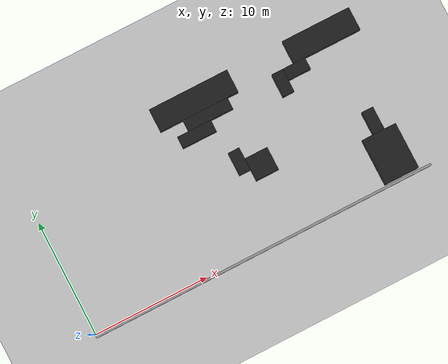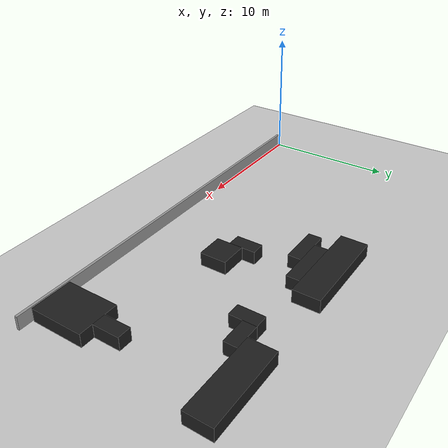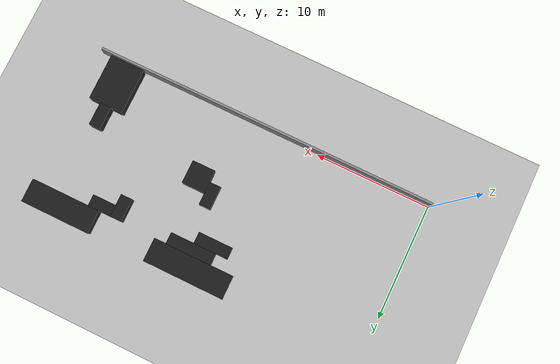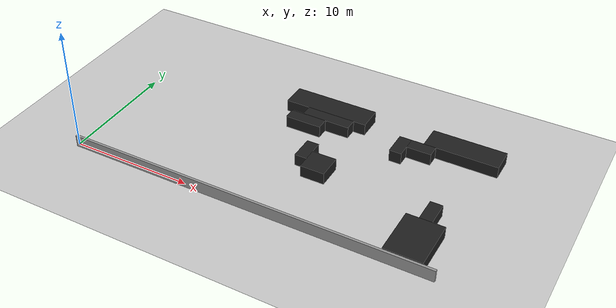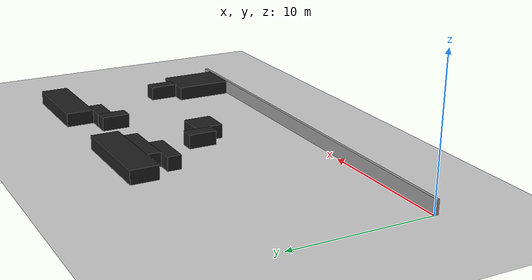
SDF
<sdf version="1.6">
 <world name="default">
  <model name="ground_plane">
   <static>1</static>
   <link name="link">
    <collision name="collision">
     <geometry><plane><normal>0 0 1</normal><size>100 100</size></plane></geometry>
     <surface><friction><ode><mu>100</mu><mu2>50</mu2></ode></friction></surface>
    </collision>
    <visual name="visual">
     <cast_shadows>0</cast_shadows>
     <geometry><plane><normal>0 0 1</normal><size>100 100</size></plane></geometry>
     <material>
      <script><uri>file://media/materials/scripts/gazebo.material</uri><name>Gazebo/Grey</name></script>
     </material>
    </visual>
   </link>
  </model>
  <model name="obstacle9">
   <link name="link_0">
    <inertial>
     <mass>1</mass>
     <inertia>
      <ixx>0.166667</ixx>
      <ixy>0</ixy>
      <ixz>0</ixz>
      <iyy>0.166667</iyy>
      <iyz>0</iyz>
      <izz>0.166667</izz>
     </inertia>
    </inertial>
    <visual name="visual">
     <geometry><box><size>3 4 1</size></box></geometry>
     <material>
      <lighting>1</lighting>
      <script><uri>file://media/materials/scripts/gazebo.material</uri><name>Gazebo/Black</name></script>
      <ambient>0 0 0 1</ambient>
      <diffuse>0 0 0 1</diffuse>
      <specular>0.01 0.01 0.01 1</specular>
      <emissive>0 0 0 1</emissive>
      <shader type="vertex"><normal_map>__default__</normal_map></shader>
     </material>
    </visual>
    <collision name="collision">
     <geometry><box><size>3 4 1</size></box></geometry>
     <surface>
      <friction>
       <ode><mu>5</mu><mu2>5</mu2><fdir1>0 0 0</fdir1><slip1>0</slip1><slip2>0</slip2></ode>
       <torsional>
        <coefficient>1</coefficient>
        <patch_radius>0</patch_radius>
        <surface_radius>0</surface_radius>
        <use_patch_radius>1</use_patch_radius>
        <ode><slip>0</slip></ode>
       </torsional>
      </friction>
      <bounce><restitution_coefficient>0</restitution_coefficient><threshold>1e+06</threshold></bounce>
      <contact>
       <collide_without_contact>0</collide_without_contact>
       <collide_without_contact_bitmask>1</collide_without_contact_bitmask>
       <collide_bitmask>1</collide_bitmask>
       <ode>
        <soft_cfm>0</soft_cfm>
        <soft_erp>0.2</soft_erp>
        <kp>1e+13</kp>
        <kd>1</kd>
        <max_vel>0.01</max_vel>
        <min_depth>0</min_depth>
       </ode>
       <bullet>
        <split_impulse>1</split_impulse>
        <split_impulse_penetration_threshold>-0.01</split_impulse_penetration_threshold>
        <soft_cfm>0</soft_cfm>
        <soft_erp>0.2</soft_erp>
        <kp>1e+13</kp>
        <kd>1</kd>
       </bullet>
      </contact>
     </surface>
    </collision>
   </link>
   <static>0</static>
   <pose>27.5 2.0 0.5 0 -0 0</pose>
  </model>
  <model name="obstacle10">
   <link name="link_0">
    <inertial>
     <mass>1</mass>
     <inertia>
      <ixx>0.166667</ixx>
      <ixy>0</ixy>
      <ixz>0</ixz>
      <iyy>0.166667</iyy>
      <iyz>0</iyz>
      <izz>0.166667</izz>
     </inertia>
    </inertial>
    <visual name="visual">
     <geometry><box><size>1 2 1</size></box></geometry>
     <material>
      <lighting>1</lighting>
      <script><uri>file://media/materials/scripts/gazebo.material</uri><name>Gazebo/Black</name></script>
      <ambient>0 0 0 1</ambient>
      <diffuse>0 0 0 1</diffuse>
      <specular>0.01 0.01 0.01 1</specular>
      <emissive>0 0 0 1</emissive>
      <shader type="vertex"><normal_map>__default__</normal_map></shader>
     </material>
    </visual>
    <collision name="collision">
     <geometry><box><size>1 2 1</size></box></geometry>
     <surface>
      <friction>
       <ode><mu>5</mu><mu2>5</mu2><fdir1>0 0 0</fdir1><slip1>0</slip1><slip2>0</slip2></ode>
       <torsional>
        <coefficient>1</coefficient>
        <patch_radius>0</patch_radius>
        <surface_radius>0</surface_radius>
        <use_patch_radius>1</use_patch_radius>
        <ode><slip>0</slip></ode>
       </torsional>
      </friction>
      <bounce><restitution_coefficient>0</restitution_coefficient><threshold>1e+06</threshold></bounce>
      <contact>
       <collide_without_contact>0</collide_without_contact>
       <collide_without_contact_bitmask>1</collide_without_contact_bitmask>
       <collide_bitmask>1</collide_bitmask>
       <ode>
        <soft_cfm>0</soft_cfm>
        <soft_erp>0.2</soft_erp>
        <kp>1e+13</kp>
        <kd>1</kd>
        <max_vel>0.01</max_vel>
        <min_depth>0</min_depth>
       </ode>
       <bullet>
        <split_impulse>1</split_impulse>
        <split_impulse_penetration_threshold>-0.01</split_impulse_penetration_threshold>
        <soft_cfm>0</soft_cfm>
        <soft_erp>0.2</soft_erp>
        <kp>1e+13</kp>
        <kd>1</kd>
       </bullet>
      </contact>
     </surface>
    </collision>
   </link>
   <static>0</static>
   <pose>27.5 5.0 0.5 0 -0 0</pose>
  </model>
  <model name="obstacle14">
   <link name="link_0">
    <inertial>
     <mass>1</mass>
     <inertia>
      <ixx>0.166667</ixx>
      <ixy>0</ixy>
      <ixz>0</ixz>
      <iyy>0.166667</iyy>
      <iyz>0</iyz>
      <izz>0.166667</izz>
     </inertia>
    </inertial>
    <visual name="visual">
     <geometry><box><size>1 2 1</size></box></geometry>
     <material>
      <lighting>1</lighting>
      <script><uri>file://media/materials/scripts/gazebo.material</uri><name>Gazebo/Black</name></script>
      <ambient>0 0 0 1</ambient>
      <diffuse>0 0 0 1</diffuse>
      <specular>0.01 0.01 0.01 1</specular>
      <emissive>0 0 0 1</emissive>
      <shader type="vertex"><normal_map>__default__</normal_map></shader>
     </material>
    </visual>
    <collision name="collision">
     <geometry><box><size>1 2 1</size></box></geometry>
     <surface>
      <friction>
       <ode><mu>5</mu><mu2>5</mu2><fdir1>0 0 0</fdir1><slip1>0</slip1><slip2>0</slip2></ode>
       <torsional>
        <coefficient>1</coefficient>
        <patch_radius>0</patch_radius>
        <surface_radius>0</surface_radius>
        <use_patch_radius>1</use_patch_radius>
        <ode><slip>0</slip></ode>
       </torsional>
      </friction>
      <bounce><restitution_coefficient>0</restitution_coefficient><threshold>1e+06</threshold></bounce>
      <contact>
       <collide_without_contact>0</collide_without_contact>
       <collide_without_contact_bitmask>1</collide_without_contact_bitmask>
       <collide_bitmask>1</collide_bitmask>
       <ode>
        <soft_cfm>0</soft_cfm>
        <soft_erp>0.2</soft_erp>
        <kp>1e+13</kp>
        <kd>1</kd>
        <max_vel>0.01</max_vel>
        <min_depth>0</min_depth>
       </ode>
       <bullet>
        <split_impulse>1</split_impulse>
        <split_impulse_penetration_threshold>-0.01</split_impulse_penetration_threshold>
        <soft_cfm>0</soft_cfm>
        <soft_erp>0.2</soft_erp>
        <kp>1e+13</kp>
        <kd>1</kd>
       </bullet>
      </contact>
     </surface>
    </collision>
   </link>
   <static>0</static>
   <pose>16.5 7.0 0.5 0 -0 0</pose>
  </model>
  <model name="obstacle15">
   <link name="link_0">
    <inertial>
     <mass>1</mass>
     <inertia>
      <ixx>0.166667</ixx>
      <ixy>0</ixy>
      <ixz>0</ixz>
      <iyy>0.166667</iyy>
      <iyz>0</iyz>
      <izz>0.166667</izz>
     </inertia>
    </inertial>
    <visual name="visual">
     <geometry><box><size>2 2 1</size></box></geometry>
     <material>
      <lighting>1</lighting>
      <script><uri>file://media/materials/scripts/gazebo.material</uri><name>Gazebo/Black</name></script>
      <ambient>0 0 0 1</ambient>
      <diffuse>0 0 0 1</diffuse>
      <specular>0.01 0.01 0.01 1</specular>
      <emissive>0 0 0 1</emissive>
      <shader type="vertex"><normal_map>__default__</normal_map></shader>
     </material>
    </visual>
    <collision name="collision">
     <geometry><box><size>2 2 1</size></box></geometry>
     <surface>
      <friction>
       <ode><mu>5</mu><mu2>5</mu2><fdir1>0 0 0</fdir1><slip1>0</slip1><slip2>0</slip2></ode>
       <torsional>
        <coefficient>1</coefficient>
        <patch_radius>0</patch_radius>
        <surface_radius>0</surface_radius>
        <use_patch_radius>1</use_patch_radius>
        <ode><slip>0</slip></ode>
       </torsional>
      </friction>
      <bounce><restitution_coefficient>0</restitution_coefficient><threshold>1e+06</threshold></bounce>
      <contact>
       <collide_without_contact>0</collide_without_contact>
       <collide_without_contact_bitmask>1</collide_without_contact_bitmask>
       <collide_bitmask>1</collide_bitmask>
       <ode>
        <soft_cfm>0</soft_cfm>
        <soft_erp>0.2</soft_erp>
        <kp>1e+13</kp>
        <kd>1</kd>
        <max_vel>0.01</max_vel>
        <min_depth>0</min_depth>
       </ode>
       <bullet>
        <split_impulse>1</split_impulse>
        <split_impulse_penetration_threshold>-0.01</split_impulse_penetration_threshold>
        <soft_cfm>0</soft_cfm>
        <soft_erp>0.2</soft_erp>
        <kp>1e+13</kp>
        <kd>1</kd>
       </bullet>
      </contact>
     </surface>
    </collision>
   </link>
   <static>0</static>
   <pose>18.0 6.0 0.5 0 -0 0</pose>
  </model>
  <model name="obstacle26">
   <link name="link_0">
    <inertial>
     <mass>1</mass>
     <inertia>
      <ixx>0.166667</ixx>
      <ixy>0</ixy>
      <ixz>0</ixz>
      <iyy>0.166667</iyy>
      <iyz>0</iyz>
      <izz>0.166667</izz>
     </inertia>
    </inertial>
    <visual name="visual">
     <geometry><box><size>3 1 1</size></box></geometry>
     <material>
      <lighting>1</lighting>
      <script><uri>file://media/materials/scripts/gazebo.material</uri><name>Gazebo/Black</name></script>
      <ambient>0 0 0 1</ambient>
      <diffuse>0 0 0 1</diffuse>
      <specular>0.01 0.01 0.01 1</specular>
      <emissive>0 0 0 1</emissive>
      <shader type="vertex"><normal_map>__default__</normal_map></shader>
     </material>
    </visual>
    <collision name="collision">
     <geometry><box><size>3 1 1</size></box></geometry>
     <surface>
      <friction>
       <ode><mu>5</mu><mu2>5</mu2><fdir1>0 0 0</fdir1><slip1>0</slip1><slip2>0</slip2></ode>
       <torsional>
        <coefficient>1</coefficient>
        <patch_radius>0</patch_radius>
        <surface_radius>0</surface_radius>
        <use_patch_radius>1</use_patch_radius>
        <ode><slip>0</slip></ode>
       </torsional>
      </friction>
      <bounce><restitution_coefficient>0</restitution_coefficient><threshold>1e+06</threshold></bounce>
      <contact>
       <collide_without_contact>0</collide_without_contact>
       <collide_without_contact_bitmask>1</collide_without_contact_bitmask>
       <collide_bitmask>1</collide_bitmask>
       <ode>
        <soft_cfm>0</soft_cfm>
        <soft_erp>0.2</soft_erp>
        <kp>1e+13</kp>
        <kd>1</kd>
        <max_vel>0.01</max_vel>
        <min_depth>0</min_depth>
       </ode>
       <bullet>
        <split_impulse>1</split_impulse>
        <split_impulse_penetration_threshold>-0.01</split_impulse_penetration_threshold>
        <soft_cfm>0</soft_cfm>
        <soft_erp>0.2</soft_erp>
        <kp>1e+13</kp>
        <kd>1</kd>
       </bullet>
      </contact>
     </surface>
    </collision>
   </link>
   <static>0</static>
   <pose>14.5 10.5 0.5 0 -0 0</pose>
  </model>
  <model name="obstacle27">
   <link name="link_0">
    <inertial>
     <mass>1</mass>
     <inertia>
      <ixx>0.166667</ixx>
      <ixy>0</ixy>
      <ixz>0</ixz>
      <iyy>0.166667</iyy>
      <iyz>0</iyz>
      <izz>0.166667</izz>
     </inertia>
    </inertial>
    <visual name="visual">
     <geometry><box><size>4 1 1</size></box></geometry>
     <material>
      <lighting>1</lighting>
      <script><uri>file://media/materials/scripts/gazebo.material</uri><name>Gazebo/Black</name></script>
      <ambient>0 0 0 1</ambient>
      <diffuse>0 0 0 1</diffuse>
      <specular>0.01 0.01 0.01 1</specular>
      <emissive>0 0 0 1</emissive>
      <shader type="vertex"><normal_map>__default__</normal_map></shader>
     </material>
    </visual>
    <collision name="collision">
     <geometry><box><size>4 1 1</size></box></geometry>
     <surface>
      <friction>
       <ode><mu>5</mu><mu2>5</mu2><fdir1>0 0 0</fdir1><slip1>0</slip1><slip2>0</slip2></ode>
       <torsional>
        <coefficient>1</coefficient>
        <patch_radius>0</patch_radius>
        <surface_radius>0</surface_radius>
        <use_patch_radius>1</use_patch_radius>
        <ode><slip>0</slip></ode>
       </torsional>
      </friction>
      <bounce><restitution_coefficient>0</restitution_coefficient><threshold>1e+06</threshold></bounce>
      <contact>
       <collide_without_contact>0</collide_without_contact>
       <collide_without_contact_bitmask>1</collide_without_contact_bitmask>
       <collide_bitmask>1</collide_bitmask>
       <ode>
        <soft_cfm>0</soft_cfm>
        <soft_erp>0.2</soft_erp>
        <kp>1e+13</kp>
        <kd>1</kd>
        <max_vel>0.01</max_vel>
        <min_depth>0</min_depth>
       </ode>
       <bullet>
        <split_impulse>1</split_impulse>
        <split_impulse_penetration_threshold>-0.01</split_impulse_penetration_threshold>
        <soft_cfm>0</soft_cfm>
        <soft_erp>0.2</soft_erp>
        <kp>1e+13</kp>
        <kd>1</kd>
       </bullet>
      </contact>
     </surface>
    </collision>
   </link>
   <static>0</static>
   <pose>16.0 11.5 0.5 0 -0 0</pose>
  </model>
  <model name="obstacle28">
   <link name="link_0">
    <inertial>
     <mass>1</mass>
     <inertia>
      <ixx>0.166667</ixx>
      <ixy>0</ixy>
      <ixz>0</ixz>
      <iyy>0.166667</iyy>
      <iyz>0</iyz>
      <izz>0.166667</izz>
     </inertia>
    </inertial>
    <visual name="visual">
     <geometry><box><size>7 2 1</size></box></geometry>
     <material>
      <lighting>1</lighting>
      <script><uri>file://media/materials/scripts/gazebo.material</uri><name>Gazebo/Black</name></script>
      <ambient>0 0 0 1</ambient>
      <diffuse>0 0 0 1</diffuse>
      <specular>0.01 0.01 0.01 1</specular>
      <emissive>0 0 0 1</emissive>
      <shader type="vertex"><normal_map>__default__</normal_map></shader>
     </material>
    </visual>
    <collision name="collision">
     <geometry><box><size>7 2 1</size></box></geometry>
     <surface>
      <friction>
       <ode><mu>5</mu><mu2>5</mu2><fdir1>0 0 0</fdir1><slip1>0</slip1><slip2>0</slip2></ode>
       <torsional>
        <coefficient>1</coefficient>
        <patch_radius>0</patch_radius>
        <surface_radius>0</surface_radius>
        <use_patch_radius>1</use_patch_radius>
        <ode><slip>0</slip></ode>
       </torsional>
      </friction>
      <bounce><restitution_coefficient>0</restitution_coefficient><threshold>1e+06</threshold></bounce>
      <contact>
       <collide_without_contact>0</collide_without_contact>
       <collide_without_contact_bitmask>1</collide_without_contact_bitmask>
       <collide_bitmask>1</collide_bitmask>
       <ode>
        <soft_cfm>0</soft_cfm>
        <soft_erp>0.2</soft_erp>
        <kp>1e+13</kp>
        <kd>1</kd>
        <max_vel>0.01</max_vel>
        <min_depth>0</min_depth>
       </ode>
       <bullet>
        <split_impulse>1</split_impulse>
        <split_impulse_penetration_threshold>-0.01</split_impulse_penetration_threshold>
        <soft_cfm>0</soft_cfm>
        <soft_erp>0.2</soft_erp>
        <kp>1e+13</kp>
        <kd>1</kd>
       </bullet>
      </contact>
     </surface>
    </collision>
   </link>
   <static>0</static>
   <pose>15.5 13.0 0.5 0 -0 0</pose>
  </model>
  <model name="obstacle41">
   <link name="link_0">
    <inertial>
     <mass>1</mass>
     <inertia>
      <ixx>0.166667</ixx>
      <ixy>0</ixy>
      <ixz>0</ixz>
      <iyy>0.166667</iyy>
      <iyz>0</iyz>
      <izz>0.166667</izz>
     </inertia>
    </inertial>
    <visual name="visual">
     <geometry><box><size>1 2 1</size></box></geometry>
     <material>
      <lighting>1</lighting>
      <script><uri>file://media/materials/scripts/gazebo.material</uri><name>Gazebo/Black</name></script>
      <ambient>0 0 0 1</ambient>
      <diffuse>0 0 0 1</diffuse>
      <specular>0.01 0.01 0.01 1</specular>
      <emissive>0 0 0 1</emissive>
      <shader type="vertex"><normal_map>__default__</normal_map></shader>
     </material>
    </visual>
    <collision name="collision">
     <geometry><box><size>1 2 1</size></box></geometry>
     <surface>
      <friction>
       <ode><mu>5</mu><mu2>5</mu2><fdir1>0 0 0</fdir1><slip1>0</slip1><slip2>0</slip2></ode>
       <torsional>
        <coefficient>1</coefficient>
        <patch_radius>0</patch_radius>
        <surface_radius>0</surface_radius>
        <use_patch_radius>1</use_patch_radius>
        <ode><slip>0</slip></ode>
       </torsional>
      </friction>
      <bounce><restitution_coefficient>0</restitution_coefficient><threshold>1e+06</threshold></bounce>
      <contact>
       <collide_without_contact>0</collide_without_contact>
       <collide_without_contact_bitmask>1</collide_without_contact_bitmask>
       <collide_bitmask>1</collide_bitmask>
       <ode>
        <soft_cfm>0</soft_cfm>
        <soft_erp>0.2</soft_erp>
        <kp>1e+13</kp>
        <kd>1</kd>
        <max_vel>0.01</max_vel>
        <min_depth>0</min_depth>
       </ode>
       <bullet>
        <split_impulse>1</split_impulse>
        <split_impulse_penetration_threshold>-0.01</split_impulse_penetration_threshold>
        <soft_cfm>0</soft_cfm>
        <soft_erp>0.2</soft_erp>
        <kp>1e+13</kp>
        <kd>1</kd>
       </bullet>
      </contact>
     </surface>
    </collision>
   </link>
   <static>0</static>
   <pose>22.5 11.0 0.5 0 -0 0</pose>
  </model>
  <model name="obstacle42">
   <link name="link_0">
    <inertial>
     <mass>1</mass>
     <inertia>
      <ixx>0.166667</ixx>
      <ixy>0</ixy>
      <ixz>0</ixz>
      <iyy>0.166667</iyy>
      <iyz>0</iyz>
      <izz>0.166667</izz>
     </inertia>
    </inertial>
    <visual name="visual">
     <geometry><box><size>2 1 1</size></box></geometry>
     <material>
      <lighting>1</lighting>
      <script><uri>file://media/materials/scripts/gazebo.material</uri><name>Gazebo/Black</name></script>
      <ambient>0 0 0 1</ambient>
      <diffuse>0 0 0 1</diffuse>
      <specular>0.01 0.01 0.01 1</specular>
      <emissive>0 0 0 1</emissive>
      <shader type="vertex"><normal_map>__default__</normal_map></shader>
     </material>
    </visual>
    <collision name="collision">
     <geometry><box><size>2 1 1</size></box></geometry>
     <surface>
      <friction>
       <ode><mu>5</mu><mu2>5</mu2><fdir1>0 0 0</fdir1><slip1>0</slip1><slip2>0</slip2></ode>
       <torsional>
        <coefficient>1</coefficient>
        <patch_radius>0</patch_radius>
        <surface_radius>0</surface_radius>
        <use_patch_radius>1</use_patch_radius>
        <ode><slip>0</slip></ode>
       </torsional>
      </friction>
      <bounce><restitution_coefficient>0</restitution_coefficient><threshold>1e+06</threshold></bounce>
      <contact>
       <collide_without_contact>0</collide_without_contact>
       <collide_without_contact_bitmask>1</collide_without_contact_bitmask>
       <collide_bitmask>1</collide_bitmask>
       <ode>
        <soft_cfm>0</soft_cfm>
        <soft_erp>0.2</soft_erp>
        <kp>1e+13</kp>
        <kd>1</kd>
        <max_vel>0.01</max_vel>
        <min_depth>0</min_depth>
       </ode>
       <bullet>
        <split_impulse>1</split_impulse>
        <split_impulse_penetration_threshold>-0.01</split_impulse_penetration_threshold>
        <soft_cfm>0</soft_cfm>
        <soft_erp>0.2</soft_erp>
        <kp>1e+13</kp>
        <kd>1</kd>
       </bullet>
      </contact>
     </surface>
    </collision>
   </link>
   <static>0</static>
   <pose>24.0 11.5 0.5 0 -0 0</pose>
  </model>
  <model name="obstacle43">
   <link name="link_0">
    <inertial>
     <mass>1</mass>
     <inertia>
      <ixx>0.166667</ixx>
      <ixy>0</ixy>
      <ixz>0</ixz>
      <iyy>0.166667</iyy>
      <iyz>0</iyz>
      <izz>0.166667</izz>
     </inertia>
    </inertial>
    <visual name="visual">
     <geometry><box><size>6 2 1</size></box></geometry>
     <material>
      <lighting>1</lighting>
      <script><uri>file://media/materials/scripts/gazebo.material</uri><name>Gazebo/Black</name></script>
      <ambient>0 0 0 1</ambient>
      <diffuse>0 0 0 1</diffuse>
      <specular>0.01 0.01 0.01 1</specular>
      <emissive>0 0 0 1</emissive>
      <shader type="vertex"><normal_map>__default__</normal_map></shader>
     </material>
    </visual>
    <collision name="collision">
     <geometry><box><size>6 2 1</size></box></geometry>
     <surface>
      <friction>
       <ode><mu>5</mu><mu2>5</mu2><fdir1>0 0 0</fdir1><slip1>0</slip1><slip2>0</slip2></ode>
       <torsional>
        <coefficient>1</coefficient>
        <patch_radius>0</patch_radius>
        <surface_radius>0</surface_radius>
        <use_patch_radius>1</use_patch_radius>
        <ode><slip>0</slip></ode>
       </torsional>
      </friction>
      <bounce><restitution_coefficient>0</restitution_coefficient><threshold>1e+06</threshold></bounce>
      <contact>
       <collide_without_contact>0</collide_without_contact>
       <collide_without_contact_bitmask>1</collide_without_contact_bitmask>
       <collide_bitmask>1</collide_bitmask>
       <ode>
        <soft_cfm>0</soft_cfm>
        <soft_erp>0.2</soft_erp>
        <kp>1e+13</kp>
        <kd>1</kd>
        <max_vel>0.01</max_vel>
        <min_depth>0</min_depth>
       </ode>
       <bullet>
        <split_impulse>1</split_impulse>
        <split_impulse_penetration_threshold>-0.01</split_impulse_penetration_threshold>
        <soft_cfm>0</soft_cfm>
        <soft_erp>0.2</soft_erp>
        <kp>1e+13</kp>
        <kd>1</kd>
       </bullet>
      </contact>
     </surface>
    </collision>
   </link>
   <static>0</static>
   <pose>27.0 13.0 0.5 0 -0 0</pose>
  </model>
  <model name="obstacle43">
   <link name="link_0">
    <inertial>
     <mass>1</mass>
     <inertia>
      <ixx>0.166667</ixx>
      <ixy>0</ixy>
      <ixz>0</ixz>
      <iyy>0.166667</iyy>
      <iyz>0</iyz>
      <izz>0.166667</izz>
     </inertia>
    </inertial>
    <visual name="visual">
     <geometry><box><size>6 2 1</size></box></geometry>
     <material>
      <lighting>1</lighting>
      <script><uri>file://media/materials/scripts/gazebo.material</uri><name>Gazebo/Black</name></script>
      <ambient>0 0 0 1</ambient>
      <diffuse>0 0 0 1</diffuse>
      <specular>0.01 0.01 0.01 1</specular>
      <emissive>0 0 0 1</emissive>
      <shader type="vertex"><normal_map>__default__</normal_map></shader>
     </material>
    </visual>
    <collision name="collision">
     <geometry><box><size>6 2 1</size></box></geometry>
     <surface>
      <friction>
       <ode><mu>5</mu><mu2>5</mu2><fdir1>0 0 0</fdir1><slip1>0</slip1><slip2>0</slip2></ode>
       <torsional>
        <coefficient>1</coefficient>
        <patch_radius>0</patch_radius>
        <surface_radius>0</surface_radius>
        <use_patch_radius>1</use_patch_radius>
        <ode><slip>0</slip></ode>
       </torsional>
      </friction>
      <bounce><restitution_coefficient>0</restitution_coefficient><threshold>1e+06</threshold></bounce>
      <contact>
       <collide_without_contact>0</collide_without_contact>
       <collide_without_contact_bitmask>1</collide_without_contact_bitmask>
       <collide_bitmask>1</collide_bitmask>
       <ode>
        <soft_cfm>0</soft_cfm>
        <soft_erp>0.2</soft_erp>
        <kp>1e+13</kp>
        <kd>1</kd>
        <max_vel>0.01</max_vel>
        <min_depth>0</min_depth>
       </ode>
       <bullet>
        <split_impulse>1</split_impulse>
        <split_impulse_penetration_threshold>-0.01</split_impulse_penetration_threshold>
        <soft_cfm>0</soft_cfm>
        <soft_erp>0.2</soft_erp>
        <kp>1e+13</kp>
        <kd>1</kd>
       </bullet>
      </contact>
     </surface>
    </collision>
   </link>
   <static>0</static>
   <pose>27.0 13.0 0.5 0 -0 0</pose>
  </model>
  <model name="obstacle43">
   <link name="link_0">
    <inertial>
     <mass>1</mass>
     <inertia>
      <ixx>0.166667</ixx>
      <ixy>0</ixy>
      <ixz>0</ixz>
      <iyy>0.166667</iyy>
      <iyz>0</iyz>
      <izz>0.166667</izz>
     </inertia>
    </inertial>
    <visual name="visual">
     <geometry><box><size>6 2 1</size></box></geometry>
     <material>
      <lighting>1</lighting>
      <script><uri>file://media/materials/scripts/gazebo.material</uri><name>Gazebo/Black</name></script>
      <ambient>0 0 0 1</ambient>
      <diffuse>0 0 0 1</diffuse>
      <specular>0.01 0.01 0.01 1</specular>
      <emissive>0 0 0 1</emissive>
      <shader type="vertex"><normal_map>__default__</normal_map></shader>
     </material>
    </visual>
    <collision name="collision">
     <geometry><box><size>6 2 1</size></box></geometry>
     <surface>
      <friction>
       <ode><mu>5</mu><mu2>5</mu2><fdir1>0 0 0</fdir1><slip1>0</slip1><slip2>0</slip2></ode>
       <torsional>
        <coefficient>1</coefficient>
        <patch_radius>0</patch_radius>
        <surface_radius>0</surface_radius>
        <use_patch_radius>1</use_patch_radius>
        <ode><slip>0</slip></ode>
       </torsional>
      </friction>
      <bounce><restitution_coefficient>0</restitution_coefficient><threshold>1e+06</threshold></bounce>
      <contact>
       <collide_without_contact>0</collide_without_contact>
       <collide_without_contact_bitmask>1</collide_without_contact_bitmask>
       <collide_bitmask>1</collide_bitmask>
       <ode>
        <soft_cfm>0</soft_cfm>
        <soft_erp>0.2</soft_erp>
        <kp>1e+13</kp>
        <kd>1</kd>
        <max_vel>0.01</max_vel>
        <min_depth>0</min_depth>
       </ode>
       <bullet>
        <split_impulse>1</split_impulse>
        <split_impulse_penetration_threshold>-0.01</split_impulse_penetration_threshold>
        <soft_cfm>0</soft_cfm>
        <soft_erp>0.2</soft_erp>
        <kp>1e+13</kp>
        <kd>1</kd>
       </bullet>
      </contact>
     </surface>
    </collision>
   </link>
   <static>0</static>
   <pose>27.0 13.0 0.5 0 -0 0</pose>
  </model>
  <model name="boundry1">
   <static>1</static>
   <link name="link">
    <pose>0 0 0.5 0 -0 0</pose>
    <collision name="collision"><geometry><box><size>15.0 0.2 1.0</size></box></geometry></collision>
    <visual name="visual">
     <cast_shadows>0</cast_shadows>
     <geometry><box><size>30.0 0.2 1.0</size></box></geometry>
     <material>
      <script>
       <uri>model://grey_wall/materials/scripts</uri>
       <uri>model://grey_wall/materials/textures</uri>
       <name>vrc/grey_wall</name>
      </script>
     </material>
    </visual>
   </link>
   <pose>15.0 -0.2 0 0 -0 0</pose>
  </model>
 </world>
</sdf>
